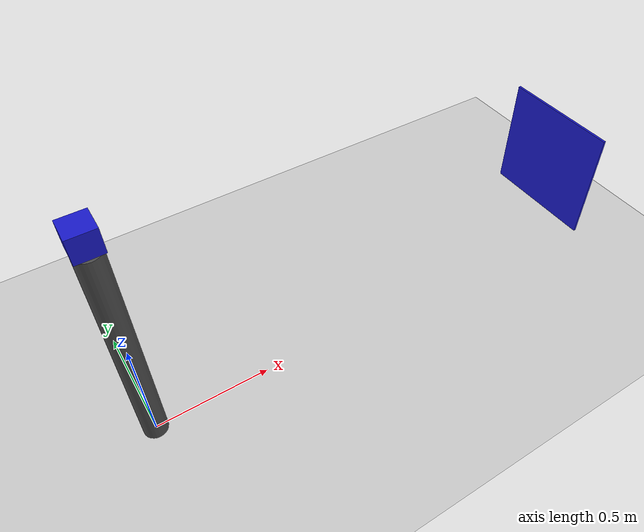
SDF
<?xml version="1.0" ?>
<sdf version="1.8">
    <world name="car_world">
        <physics name="1ms" type="ignored">
            <max_step_size>0.001</max_step_size>
            <real_time_factor>1.0</real_time_factor>
        </physics>
        <plugin
            filename="libignition-gazebo-physics-system.so"
            name="ignition::gazebo::systems::Physics">
        </plugin>
        <plugin
            filename="libignition-gazebo-user-commands-system.so"
            name="ignition::gazebo::systems::UserCommands">
        </plugin>
        <plugin
            filename="libignition-gazebo-scene-broadcaster-system.so"
            name="ignition::gazebo::systems::SceneBroadcaster">
        </plugin>
        <plugin
            filename="libignition-gazebo-sensors-system.so"
            name="ignition::gazebo::systems::Sensors">
            <render_engine>ogre2</render_engine>
        </plugin>

        <light type="directional" name="sun">
            <cast_shadows>true</cast_shadows>
            <pose>0 0 10 0 0 0</pose>
            <diffuse>0.8 0.8 0.8 1</diffuse>
            <specular>0.2 0.2 0.2 1</specular>
            <attenuation>
                <range>1000</range>
                <constant>0.9</constant>
                <linear>0.01</linear>
                <quadratic>0.001</quadratic>
            </attenuation>
            <direction>-0.5 0.1 -0.9</direction>
        </light>

        <model name="ground_plane">
            <static>true</static>
            <link name="link">
                <collision name="collision">
                <geometry>
                    <plane>
                    <normal>0 0 1</normal>
                    </plane>
                </geometry>
                </collision>
                <visual name="visual">
                <geometry>
                    <plane>
                    <normal>0 0 1</normal>
                    <size>100 100</size>
                    </plane>
                </geometry>
                <material>
                    <ambient>0.8 0.8 0.8 1</ambient>
                    <diffuse>0.8 0.8 0.8 1</diffuse>
                    <specular>0.8 0.8 0.8 1</specular>
                </material>
                </visual>
            </link>
        </model>

        <model name="camera_model">
            <static>true</static>
            <pose>0 0 0 0 0 0</pose>

            <!-- 1-metre pole -->
            <link name="pole">
                <pose>0 0 0.5 0 0 0</pose>
                <collision name="pole_collision">
                    <geometry>
                        <cylinder>
                            <radius>0.05</radius>
                            <length>1.0</length>
                        </cylinder>
                    </geometry>
                </collision>
                <visual name="pole_visual">
                    <geometry>
                        <cylinder>
                            <radius>0.05</radius>
                            <length>1.0</length>
                        </cylinder>
                    </geometry>
                    <material>
                        <ambient>0.3 0.3 0.3 1</ambient>
                        <diffuse>0.3 0.3 0.3 1</diffuse>
                        <specular>0.1 0.1 0.1 1</specular>
                    </material>
                </visual>
            </link>

            <!-- Camera body sitting on top of the pole (z = 1.0 m) -->
            <link name="camera_link">
                <pose>0 0 1.06 0 0 0</pose>
                <collision name="camera_collision">
                    <geometry>
                        <box>
                            <size>0.1 0.1 0.1</size>
                        </box>
                    </geometry>
                </collision>
                <visual name="camera_visual">
                    <geometry>
                        <box>
                            <size>0.1 0.1 0.1</size>
                        </box>
                    </geometry>
                    <material>
                        <ambient>0.1 0.1 0.8 1</ambient>
                        <diffuse>0.1 0.1 0.8 1</diffuse>
                        <specular>0.1 0.1 0.1 1</specular>
                    </material>
                </visual>

                <sensor name="camera_sensor" type="camera">
                    <pose>0 0 0 0 0 0</pose>
                    <camera>
                        <horizontal_fov>1.047</horizontal_fov>
                        <image>
                            <width>640</width>
                            <height>480</height>
                            <format>R8G8B8</format>
                        </image>
                        <clip>
                            <near>0.1</near>
                            <far>100</far>
                        </clip>
                    </camera>
                    <always_on>1</always_on>
                    <update_rate>30</update_rate>
                    <visualize>true</visualize>
                    <topic>/camera/image_raw</topic>
                </sensor>
            </link>

            <joint name="pole_to_camera" type="fixed">
                <parent>pole</parent>
                <child>camera_link</child>
            </joint>

        </model>

        <model name="callibration_board">
            <pose>2 0 0.5 0 1.5708 0</pose>

            <link name="board_link">
                <collision name="board_collision">
                    <geometry>
                        <box>
                            <size>0.5 0.5 0.01</size>
                        </box>
                    </geometry>
                </collision>
                <visual name="board_visual">
                    <geometry>
                        <box>
                            <size>0.5 0.5 0.01</size>
                        </box>
                    </geometry>
                    <material>
                        <ambient>0.1 0.1 0.8 1</ambient>
                        <diffuse>0.1 0.1 0.8 1</diffuse>
                        <specular>0.1 0.1 0.3 1</specular>
                    </material>
                </visual>

            </link>
        </model>

    </world>
</sdf>
